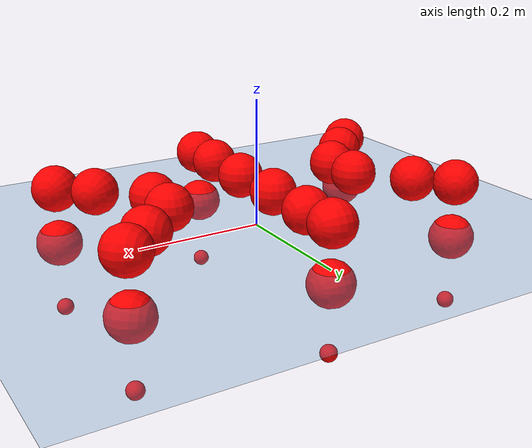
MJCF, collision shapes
<mujoco model="Golem">
  <compiler angle="radian" assetdir="assets" balanceinertia="true" inertiafromgeom="false"/>

  <option timestep="0.005" density="1.2" viscosity="2e-05"/>

  <size nkey="1"/>

  <visual>
    <quality shadowsize="8192"/>
    <map shadowclip="0.5"/>
  </visual>

  <default>
    <default class="/">
      <joint armature="0.01" damping="0.01" frictionloss="0.01"/>
      <geom contype="0" conaffinity="0" group="1" solref="-1000 -80"/>
      <site size="0.01 0.005 0.005" group="5"/>
      <general forcelimited="true" biastype="affine" gainprm="25" biasprm="0 -25 -0.5"/>
      <default class="visual">
        <geom type="mesh" group="2"/>
      </default>
      <default class="collision">
        <geom group="3"/>
      </default>
      <default class="foot">
        <geom size="0.01 0 0" condim="6" group="4" priority="1" solimp="0.015 1 0.01"/>
      </default>
      <default class="reward_collision_sphere">
        <geom group="5" rgba="1 0 0 1"/>
      </default>
    </default>
  </default>

  <asset>
    <texture type="skybox" colorspace="auto" name="//unnamed_texture_0" builtin="gradient" rgb1="0.95 0.95 0.95" rgb2="0.95 0.95 0.95" width="100" height="600"/>
    <texture type="2d" colorspace="auto" name="texplane" builtin="checker" rgb1="0.345 0.575 0.748" rgb2="0.345 0.575 0.748" markrgb="1 1 1" width="512" height="512"/>
    <material name="MatPlane" class="/" texture="texplane" texuniform="true" texrepeat="2 2" specular="0.9"/>
    <mesh name="body" class="/" file="body.stl" scale="0.001 0.001 0.001"/>
    <mesh name="coxa" class="/" file="coxa.stl" scale="0.001 0.001 0.001"/>
    <mesh name="femur" class="/" file="femur.stl" scale="0.001 0.001 0.001"/>
    <mesh name="tibia" class="/" file="tibia.stl" scale="0.001 0.001 0.001"/>
    <mesh name="tarsus" class="/" file="tarsus.stl" scale="0.001 0.001 0.001"/>
  </asset>

  <worldbody>
    <geom name="floor" class="/" size="100 100 0.125" type="plane" group="0" material="MatPlane"/>
    <light name="toplight_shadow" class="/" pos="0 0 5" dir="0.0990148 0.0990148 -0.990148" type="directional" ambient="0.04 0.04 0.04" diffuse="0.55 0.55 0.55" specular="0.12 0.12 0.12"/>
    <light name="toplight_fill" class="/" pos="0 0 5" dir="0.0990148 0.0990148 -0.990148" type="directional" castshadow="false" ambient="0.04 0.04 0.04" diffuse="0.3 0.3 0.3" specular="0.08 0.08 0.08"/>
    <body name="trunk" pos="-3.43076e-05 -0.000514996 0.000752323" quat="1 3.24167e-05 -6.61657e-06 2.4336e-05">
      <inertial pos="-0.000417795 0.000451585 -0.00391428" quat="0.999998 0.000371241 0.00171306 -0.000125204" mass="2.65602" diaginertia="0.0120303 0.000797173 0.0124493"/>
      <joint name="//unnamed_joint_0" type="free"/>
      <geom name="//unnamed_geom_1" class="/" pos="0 0 0.0668654" quat="1 0 0 0" type="mesh" rgba="0.9 0.9 0.9 1" mesh="body"/>
      <site name="imu" class="/" pos="0.134462 0.000358929 0.110678" size="0.00893882"/>
      <camera name="track" class="/" pos="0 -1.20043 0" quat="0.707107 0.707107 0 0" mode="trackcom"/>
      <camera name="ego_camera" class="/" pos="0.134766 0 0.104477" quat="-0.5 -0.5 0.5 0.5"/>
      <body name="coxa_RR" pos="-0.183479 -0.0511168 0.0688938" quat="0.383018 0.00023247 -0.000545308 -0.923741">
        <inertial pos="-0.000297544 -0.000363407 0.00175299" quat="0.999991 -0.00063684 -0.000782988 0.00404691" mass="0.143322" diaginertia="0.0119867 0.000784037 0.012683"/>
        <joint name="coxa_joint_RR" class="/" pos="0 0 0" axis="-0.00214653 -0.0029173 -0.999993" range="-3.15443 3.14405" armature="0.00913565" damping="0.00503044" frictionloss="0.00866778"/>
        <geom name="//unnamed_geom_2" class="/" type="mesh" rgba="0.2 0.2 0.2 1" mesh="coxa"/>
        <geom name="//unnamed_geom_3" class="reward_collision_sphere" size="0.0357553" pos="-0.0310998 0 0"/>
        <body name="femur_RR" pos="0.0625048 0.00189252 -0.000505316" quat="0.499514 -0.500225 0.500145 0.500115">
          <inertial pos="2.39436e-05 0.000933073 -0.000925497" quat="0.999992 0.00104339 -0.00112273 0.0036898" mass="0.142036" diaginertia="0.0117854 0.000784143 0.0123728"/>
          <joint name="femur_joint_RR" class="/" pos="0 0 0" axis="-0.00021823 0.000579278 -1" range="-3.14586 3.14571" armature="0.00896938" damping="0.00209952" frictionloss="0.00890571"/>
          <geom name="//unnamed_geom_4" class="/" type="mesh" rgba="0.9 0.9 0.9 1" mesh="femur"/>
          <geom name="//unnamed_geom_5" class="reward_collision_sphere" size="0.0357553"/>
          <body name="tibia_RR" pos="0.000668354 -0.0661482 0.00108585" quat="-3.70814e-05 1 -1.78979e-05 5.51272e-05">
            <inertial pos="-0.00019297 0.000979515 0.000408406" quat="1 -0.000158947 -4.34725e-05 -0.000248024" mass="0.144261" diaginertia="0.0120886 0.000784523 0.0125173"/>
            <joint name="tibia_joint_RR" class="/" pos="0 0 0" axis="0.0011541 -0.0038578 0.999992" range="-3.1235 3.14667" armature="0.00938683" damping="0" frictionloss="0.00958962"/>
            <geom name="//unnamed_geom_6" class="/" type="mesh" rgba="0.2 0.2 0.2 1" mesh="tibia"/>
            <geom name="//unnamed_geom_7" class="reward_collision_sphere" size="0.0357553"/>
            <body name="tarsus_RR" pos="0.0901543 -0.000203032 -0.00164268" quat="1 -1.43056e-05 -0.000398919 7.1491e-05">
              <inertial pos="0.0608099 2.78279e-05 -0.000638652" quat="0.503872 0.498041 0.498231 0.499833" mass="0.14223" diaginertia="0.0119858 0.000775562 0.0126053"/>
              <joint name="tarsus_joint_RR" class="/" pos="0 0 0" axis="0.000243177 0.00191036 0.999998" stiffness="4.53075e-05" range="-3.12046 3.13659" armature="0.00900445" damping="0.00364539" frictionloss="0.00913281"/>
              <geom name="//unnamed_geom_8" class="/" type="mesh" rgba="0.9 0.9 0.9 1" mesh="tarsus"/>
              <geom name="foot_1" class="foot" size="0.00882047" pos="0.116106 0 0" quat="0 -0.707107 0 0.707107"/>
              <geom name="//unnamed_geom_10" class="reward_collision_sphere" size="0.0357553"/>
              <geom name="//unnamed_geom_11" class="reward_collision_sphere" size="0.0134082" pos="0.111441 0 0"/>
              <site name="foot_1" class="foot" pos="0.116106 0 0" quat="0 -0.707107 0 0.707107" size="0.00893882"/>
            </body>
          </body>
        </body>
      </body>
      <body name="coxa_RM" pos="0.000616128 -0.0811356 0.0670311" quat="0.707082 0.000280322 -2.14573e-05 -0.707131">
        <inertial pos="0.000440837 -2.2845e-05 0.000194872" quat="0.999981 0.00127026 0.0028502 -0.00525795" mass="0.146829" diaginertia="0.0121306 0.000799889 0.0126004"/>
        <joint name="coxa_joint_RM" class="/" pos="0 0 0" axis="-0.0022199 0.0043384 -0.999988" range="-3.13743 3.15757" armature="0.00893809" damping="0.0122085" frictionloss="0.00861786"/>
        <geom name="//unnamed_geom_12" class="/" type="mesh" rgba="0.2 0.2 0.2 1" mesh="coxa"/>
        <geom name="//unnamed_geom_13" class="reward_collision_sphere" size="0.0357553" pos="-0.0310998 0 0"/>
        <body name="femur_RM" pos="0.0592043 -0.000786 0.000544455" quat="0.49982 -0.50006 0.499949 0.500172">
          <inertial pos="-3.31196e-05 -0.000775042 0.000176162" quat="0.999997 -0.000893817 0.00237442 0.000478362" mass="0.141173" diaginertia="0.0119447 0.000781695 0.0125948"/>
          <joint name="femur_joint_RM" class="/" pos="0 0 0" axis="0.000451572 6.36373e-05 -1" range="-3.1408 3.11995" armature="0.00865687" damping="0.00534465" frictionloss="0.00913515"/>
          <geom name="//unnamed_geom_14" class="/" type="mesh" rgba="0.9 0.9 0.9 1" mesh="femur"/>
          <geom name="//unnamed_geom_15" class="reward_collision_sphere" size="0.0357553"/>
          <body name="tibia_RM" pos="0.000674936 -0.0636672 -0.00065998" quat="-0.000133206 1 -5.21158e-05 -0.000268494">
            <inertial pos="-1.75821e-05 -0.000752736 -0.000197391" quat="0.999998 -0.00064287 0.0014459 -0.00152246" mass="0.1442" diaginertia="0.0120209 0.000777276 0.0125986"/>
            <joint name="tibia_joint_RM" class="/" pos="0 0 0" axis="-0.00139135 0.00276337 0.999995" range="-3.15481 3.1263" armature="0.00854679" damping="0.00475844" frictionloss="0.00926644"/>
            <geom name="//unnamed_geom_16" class="/" type="mesh" rgba="0.2 0.2 0.2 1" mesh="tibia"/>
            <geom name="//unnamed_geom_17" class="reward_collision_sphere" size="0.0357553"/>
            <body name="tarsus_RM" pos="0.0887441 -0.00111708 0.00107533" quat="1 0.000183356 -3.76693e-05 -0.000227206">
              <inertial pos="0.0623465 0.000792801 0.000416691" quat="0.500463 0.499826 0.499975 0.499735" mass="0.14353" diaginertia="0.0121065 0.00078535 0.0125764"/>
              <joint name="tarsus_joint_RM" class="/" pos="0 0 0" axis="-0.00124845 -0.00232717 0.999997" range="-3.15136 3.13031" armature="0.0093395" damping="0.00289696" frictionloss="0.00905649"/>
              <geom name="//unnamed_geom_18" class="/" type="mesh" rgba="0.9 0.9 0.9 1" mesh="tarsus"/>
              <geom name="foot_2" class="foot" size="0.0092885" pos="0.116106 0 0" quat="0 -0.707107 0 0.707107"/>
              <geom name="//unnamed_geom_20" class="reward_collision_sphere" size="0.0357553"/>
              <geom name="//unnamed_geom_21" class="reward_collision_sphere" size="0.0134082" pos="0.111441 0 0"/>
              <site name="foot_2" class="foot" pos="0.116106 0 0" quat="0 -0.707107 0 0.707107" size="0.00893882"/>
            </body>
          </body>
        </body>
      </body>
      <body name="coxa_RF" pos="0.183595 -0.0513181 0.067155" quat="0.923914 4.96292e-05 -9.97087e-05 -0.382601">
        <inertial pos="-0.000693622 -0.000139589 0.000424348" quat="0.999992 -0.00153942 0.00364312 0.0010218" mass="0.143565" diaginertia="0.0121798 0.00079834 0.0126088"/>
        <joint name="coxa_joint_RF" class="/" pos="0 0 0" axis="-0.00172157 -0.00267182 -0.999995" range="-3.13791 3.15402" armature="0.00872466" damping="0.0125344" frictionloss="0.0091673"/>
        <geom name="//unnamed_geom_22" class="/" type="mesh" rgba="0.2 0.2 0.2 1" mesh="coxa"/>
        <geom name="//unnamed_geom_23" class="reward_collision_sphere" size="0.0357553" pos="-0.0310998 0 0"/>
        <body name="femur_RF" pos="0.0619154 0.000425766 -0.000835202" quat="0.499999 -0.499984 0.49998 0.500036">
          <inertial pos="0.000610449 -0.000277041 -6.30789e-06" quat="0.999989 0.00148331 0.0044516 -0.000300488" mass="0.14359" diaginertia="0.0120797 0.000783118 0.012577"/>
          <joint name="femur_joint_RF" class="/" pos="0 0 0" axis="9.88364e-07 0.00329081 -0.999995" range="-3.15711 3.13575" armature="0.00903606" damping="0.00588149" frictionloss="0.0091124"/>
          <geom name="//unnamed_geom_24" class="/" type="mesh" rgba="0.9 0.9 0.9 1" mesh="femur"/>
          <geom name="//unnamed_geom_25" class="reward_collision_sphere" size="0.0357553"/>
          <body name="tibia_RF" pos="0.00100101 -0.0660346 -0.000281819" quat="7.20716e-05 1 -0.00037029 0.000275586">
            <inertial pos="5.13651e-05 -0.000382781 1.71088e-06" quat="0.999998 0.00199315 0.000388296 -0.000878864" mass="0.138845" diaginertia="0.0118422 0.000761595 0.0123954"/>
            <joint name="tibia_joint_RF" class="/" pos="0 0 0" axis="-0.000777217 -0.00113798 0.999999" range="-3.12036 3.13264" armature="0.0087865" damping="0" frictionloss="0.0093312"/>
            <geom name="//unnamed_geom_26" class="/" type="mesh" rgba="0.2 0.2 0.2 1" mesh="tibia"/>
            <geom name="//unnamed_geom_27" class="reward_collision_sphere" size="0.0357553"/>
            <body name="tarsus_RF" pos="0.0893422 0.00065109 -0.000269449" quat="1 -3.84354e-05 1.59485e-05 -8.2095e-06">
              <inertial pos="0.061466 0.00060839 -0.000303209" quat="0.499404 0.499237 0.502353 0.498998" mass="0.144097" diaginertia="0.0122457 0.000787305 0.0126707"/>
              <joint name="tarsus_joint_RF" class="/" pos="0 0 0" axis="-0.00624763 0.00697264 0.999956" range="-3.14924 3.13079" armature="0.00890901" damping="0.0011792" frictionloss="0.0085268"/>
              <geom name="//unnamed_geom_28" class="/" type="mesh" rgba="0.9 0.9 0.9 1" mesh="tarsus"/>
              <geom name="foot_3" class="foot" size="0.00868499" pos="0.116106 0 0" quat="0 -0.707107 0 0.707107"/>
              <geom name="//unnamed_geom_30" class="reward_collision_sphere" size="0.0357553"/>
              <geom name="//unnamed_geom_31" class="reward_collision_sphere" size="0.0134082" pos="0.111441 0 0"/>
              <site name="foot_3" class="foot" pos="0.116106 0 0" quat="0 -0.707107 0 0.707107" size="0.00893882"/>
            </body>
          </body>
        </body>
      </body>
      <body name="coxa_LR" pos="-0.183633 0.0533294 0.0675863" quat="0.38269 -0.000176096 0.000104296 0.923877">
        <inertial pos="0.00120806 -0.00028615 0.000332377" quat="0.999998 -0.00055976 0.000648239 0.00190204" mass="0.144053" diaginertia="0.0120867 0.000790172 0.0125233"/>
        <joint name="coxa_joint_LR" class="/" pos="0 0 0" axis="-0.00122427 0.00235315 -0.999996" range="-3.12102 3.14995" armature="0.00885649" damping="0.00954427" frictionloss="0.00871521"/>
        <geom name="//unnamed_geom_32" class="/" type="mesh" rgba="0.2 0.2 0.2 1" mesh="coxa"/>
        <geom name="//unnamed_geom_33" class="reward_collision_sphere" size="0.0357553" pos="-0.0310998 0 0"/>
        <body name="femur_LR" pos="0.0635768 -0.00321647 -0.00144296" quat="0.500056 -0.499917 0.500054 0.499973">
          <inertial pos="0.000144785 -0.000713234 -0.000668614" quat="0.99999 -0.000216325 0.00224289 -0.00390536" mass="0.144082" diaginertia="0.0118906 0.000779551 0.0125309"/>
          <joint name="femur_joint_LR" class="/" pos="0 0 0" axis="0.00295829 -0.00852734 0.999959" range="-3.12095 3.12559" armature="0.00955525" damping="0.00604095" frictionloss="0.00886081"/>
          <geom name="//unnamed_geom_34" class="/" type="mesh" rgba="0.9 0.9 0.9 1" mesh="femur"/>
          <geom name="//unnamed_geom_35" class="reward_collision_sphere" size="0.0357553"/>
          <body name="tibia_LR" pos="0.000502134 -0.0659388 -0.0016551" quat="-0.000159842 1 -0.000133802 3.97046e-06">
            <inertial pos="0.000747882 -0.000124074 -3.80963e-05" quat="0.999996 -0.00202446 0.000415953 0.00215318" mass="0.144181" diaginertia="0.0120793 0.000772933 0.0126135"/>
            <joint name="tibia_joint_LR" class="/" pos="0 0 0" axis="-0.000504503 0.00179639 -0.999998" range="-3.12141 3.13001" armature="0.00900664" damping="0.00753343" frictionloss="0.00892969"/>
            <geom name="//unnamed_geom_36" class="/" type="mesh" rgba="0.2 0.2 0.2 1" mesh="tibia"/>
            <geom name="//unnamed_geom_37" class="reward_collision_sphere" size="0.0357553"/>
            <body name="tarsus_LR" pos="0.0905869 0.00092106 0.00149484" quat="1 -5.55257e-07 -1.23392e-05 9.94062e-05">
              <inertial pos="0.0629796 0.00019426 0.000700653" quat="0.500038 0.500075 0.500056 0.499831" mass="0.142479" diaginertia="0.012041 0.000797175 0.0123671"/>
              <joint name="tarsus_joint_LR" class="/" pos="0 0 0" axis="-0.000128626 0.00043832 -1" range="-3.14414 3.12137" armature="0.00897137" damping="0" frictionloss="0.00933209"/>
              <geom name="//unnamed_geom_38" class="/" type="mesh" rgba="0.9 0.9 0.9 1" mesh="tarsus"/>
              <geom name="foot_4" class="foot" size="0.00855983" pos="0.116106 0 0" quat="0.707107 0 -0.707107 0"/>
              <geom name="//unnamed_geom_40" class="reward_collision_sphere" size="0.0357553"/>
              <geom name="//unnamed_geom_41" class="reward_collision_sphere" size="0.0134082" pos="0.111441 0 0"/>
              <site name="foot_4" class="foot" pos="0.116106 0 0" quat="0.707107 0 -0.707107 0" size="0.00893882"/>
            </body>
          </body>
        </body>
      </body>
      <body name="coxa_LM" pos="-0.000961467 0.0775778 0.0676986" quat="0.707039 -2.22375e-05 2.42004e-05 0.707175">
        <inertial pos="0.00036613 -7.35414e-05 4.1134e-05" quat="0.999997 0.00155874 -0.00116597 -0.0014183" mass="0.144064" diaginertia="0.0118284 0.00077687 0.0124532"/>
        <joint name="coxa_joint_LM" class="/" pos="0 0 0" axis="0.004929 0.000756874 -0.999988" range="-3.14774 3.14465" armature="0.00875308" damping="0.00615739" frictionloss="0.00893508"/>
        <geom name="//unnamed_geom_42" class="/" type="mesh" rgba="0.2 0.2 0.2 1" mesh="coxa"/>
        <geom name="//unnamed_geom_43" class="reward_collision_sphere" size="0.0357553" pos="-0.0310998 0 0"/>
        <body name="femur_LM" pos="0.0580481 0.000238264 -0.00112842" quat="0.499998 -0.500005 0.499996 0.500002">
          <inertial pos="0.000355995 -1.68556e-05 -0.00138753" quat="0.999998 0.00055494 -0.000903621 -0.00154894" mass="0.14537" diaginertia="0.0121156 0.000792147 0.0125394"/>
          <joint name="femur_joint_LM" class="/" pos="0 0 0" axis="0.00676882 -0.00214978 0.999975" range="-3.13687 3.1155" armature="0.00929498" damping="0.00254875" frictionloss="0.00890116"/>
          <geom name="//unnamed_geom_44" class="/" type="mesh" rgba="0.9 0.9 0.9 1" mesh="femur"/>
          <geom name="//unnamed_geom_45" class="reward_collision_sphere" size="0.0357553"/>
          <body name="tibia_LM" pos="-0.000247745 -0.0612783 0.00149811" quat="0.000282098 1 -8.13501e-05 0.00040254">
            <inertial pos="-0.00102051 -0.000903034 -0.000256316" quat="0.999997 -0.00155011 -0.00105962 -0.00172678" mass="0.138601" diaginertia="0.0117442 0.000763253 0.0122098"/>
            <joint name="tibia_joint_LM" class="/" pos="0 0 0" axis="-0.00116342 0.000548441 -0.999999" stiffness="0.000182869" range="-3.14058 3.15857" armature="0.00967669" damping="0" frictionloss="0.00890098"/>
            <geom name="//unnamed_geom_46" class="/" type="mesh" rgba="0.2 0.2 0.2 1" mesh="tibia"/>
            <geom name="//unnamed_geom_47" class="reward_collision_sphere" size="0.0357553"/>
            <body name="tarsus_LM" pos="0.091499 -0.000553053 -0.00131041" quat="1 0.00011101 0.000242533 6.40883e-05">
              <inertial pos="0.0638559 -0.000461497 -0.000169562" quat="0.501923 0.497135 0.498216 0.502705" mass="0.14054" diaginertia="0.0117517 0.000750128 0.0123076"/>
              <joint name="tarsus_joint_LM" class="/" pos="0 0 0" axis="-0.00121177 -0.00169786 -0.999998" range="-3.13632 3.138" armature="0.00874709" damping="0.00843154" frictionloss="0.00945506"/>
              <geom name="//unnamed_geom_48" class="/" type="mesh" rgba="0.9 0.9 0.9 1" mesh="tarsus"/>
              <geom name="foot_5" class="foot" size="0.00874768" pos="0.116106 0 0" quat="0.707107 0 -0.707107 0"/>
              <geom name="//unnamed_geom_50" class="reward_collision_sphere" size="0.0357553"/>
              <geom name="//unnamed_geom_51" class="reward_collision_sphere" size="0.0134082" pos="0.111441 0 0"/>
              <site name="foot_5" class="foot" pos="0.116106 0 0" quat="0.707107 0 -0.707107 0" size="0.00893882"/>
            </body>
          </body>
        </body>
      </body>
      <body name="coxa_LF" pos="0.184574 0.0502599 0.0675131" quat="0.923905 -3.69037e-05 -0.000101707 0.382622">
        <inertial pos="-0.000521148 -0.00127313 0.000636458" quat="1 -0.000327393 -0.000860794 9.55426e-05" mass="0.143367" diaginertia="0.012003 0.000767632 0.0124292"/>
        <joint name="coxa_joint_LF" class="/" pos="0 0 0" axis="-0.000556133 0.000240108 -1" range="-3.12048 3.13788" armature="0.00855757" damping="0" frictionloss="0.00908921"/>
        <geom name="//unnamed_geom_52" class="/" type="mesh" rgba="0.2 0.2 0.2 1" mesh="coxa"/>
        <geom name="//unnamed_geom_53" class="reward_collision_sphere" size="0.0357553" pos="-0.0310998 0 0"/>
        <body name="femur_LF" pos="0.0620745 0.00121397 -0.00024279" quat="0.500061 -0.500073 0.49983 0.500036">
          <inertial pos="-0.000208512 0.000796522 -0.000139581" quat="1 0.000163531 1.54872e-05 -8.60472e-05" mass="0.141759" diaginertia="0.0117787 0.000775575 0.0123907"/>
          <joint name="femur_joint_LF" class="/" pos="0 0 0" axis="0.0011889 0.00384535 0.999992" range="-3.121 3.13494" armature="0.00910587" damping="0" frictionloss="0.00901466"/>
          <geom name="//unnamed_geom_54" class="/" type="mesh" rgba="0.9 0.9 0.9 1" mesh="femur"/>
          <geom name="//unnamed_geom_55" class="reward_collision_sphere" size="0.0357553"/>
          <body name="tibia_LF" pos="0.000218723 -0.06633 -0.000343199" quat="-0.000465169 1 1.22622e-05 0.00024368">
            <inertial pos="-0.0008648 0.000718407 0.000901076" quat="1 6.49699e-05 0.000239325 0.000186306" mass="0.141114" diaginertia="0.0120426 0.000780552 0.0125599"/>
            <joint name="tibia_joint_LF" class="/" pos="0 0 0" axis="-0.00379658 -0.00170863 -0.999991" range="-3.14086 3.1427" armature="0.00930561" damping="0" frictionloss="0.00891624"/>
            <geom name="//unnamed_geom_56" class="/" type="mesh" rgba="0.2 0.2 0.2 1" mesh="tibia"/>
            <geom name="//unnamed_geom_57" class="reward_collision_sphere" size="0.0357553"/>
            <body name="tarsus_LF" pos="0.093029 0.000958463 -0.000493262" quat="1 7.73334e-06 -0.000101926 4.61959e-05">
              <inertial pos="0.0624351 0.000307133 4.04841e-05" quat="0.502245 0.495239 0.497607 0.504852" mass="0.144517" diaginertia="0.0119859 0.000782017 0.0124255"/>
              <joint name="tarsus_joint_LF" class="/" pos="0 0 0" axis="-0.00398312 0.00552345 -0.999977" stiffness="0.0307964" range="-3.15594 3.14769" armature="0.00886811" damping="0.0261087" frictionloss="0.00934462"/>
              <geom name="//unnamed_geom_58" class="/" type="mesh" rgba="0.9 0.9 0.9 1" mesh="tarsus"/>
              <geom name="foot_6" class="foot" size="0.00909682" pos="0.116106 0 0" quat="0.707107 0 -0.707107 0"/>
              <geom name="//unnamed_geom_60" class="reward_collision_sphere" size="0.0357553"/>
              <geom name="//unnamed_geom_61" class="reward_collision_sphere" size="0.0134082" pos="0.111441 0 0"/>
              <site name="foot_6" class="foot" pos="0.116106 0 0" quat="0.707107 0 -0.707107 0" size="0.00893882"/>
            </body>
          </body>
        </body>
      </body>
    </body>
  </worldbody>

  <contact>
    <pair class="/" geom1="floor" geom2="foot_1" name="//unnamed_contact_0"/>
    <pair class="/" geom1="floor" geom2="foot_2" name="//unnamed_contact_1"/>
    <pair class="/" geom1="floor" geom2="foot_3" name="//unnamed_contact_2"/>
    <pair class="/" geom1="floor" geom2="foot_4" name="//unnamed_contact_3"/>
    <pair class="/" geom1="floor" geom2="foot_5" name="//unnamed_contact_4"/>
    <pair class="/" geom1="floor" geom2="foot_6" name="//unnamed_contact_5"/>
  </contact>

  <actuator>
    <general name="coxa_joint_RR" class="/" joint="coxa_joint_RR" forcerange="-6.50607 6.50607" gainprm="21.6477" biasprm="0 -21.6477 -0.463471"/>
    <general name="femur_joint_RR" class="/" joint="femur_joint_RR" forcerange="-6.52232 6.52232" gainprm="21.6477" biasprm="0 -21.6477 -0.463471"/>
    <general name="tibia_joint_RR" class="/" joint="tibia_joint_RR" forcerange="-6.50004 6.50004" gainprm="21.6477" biasprm="0 -21.6477 -0.463471"/>
    <general name="tarsus_joint_RR" class="/" joint="tarsus_joint_RR" forcerange="-6.5062 6.5062" gainprm="21.6477" biasprm="0 -21.6477 -0.463471"/>
    <general name="coxa_joint_RM" class="/" joint="coxa_joint_RM" forcerange="-6.69732 6.69732" gainprm="21.6477" biasprm="0 -21.6477 -0.463471"/>
    <general name="femur_joint_RM" class="/" joint="femur_joint_RM" forcerange="-6.51729 6.51729" gainprm="21.6477" biasprm="0 -21.6477 -0.463471"/>
    <general name="tibia_joint_RM" class="/" joint="tibia_joint_RM" forcerange="-6.48378 6.48378" gainprm="21.6477" biasprm="0 -21.6477 -0.463471"/>
    <general name="tarsus_joint_RM" class="/" joint="tarsus_joint_RM" forcerange="-6.32621 6.32621" gainprm="21.6477" biasprm="0 -21.6477 -0.463471"/>
    <general name="coxa_joint_RF" class="/" joint="coxa_joint_RF" forcerange="-6.5502 6.5502" gainprm="21.6477" biasprm="0 -21.6477 -0.463471"/>
    <general name="femur_joint_RF" class="/" joint="femur_joint_RF" forcerange="-6.64554 6.64554" gainprm="21.6477" biasprm="0 -21.6477 -0.463471"/>
    <general name="tibia_joint_RF" class="/" joint="tibia_joint_RF" forcerange="-6.39832 6.39832" gainprm="21.6477" biasprm="0 -21.6477 -0.463471"/>
    <general name="tarsus_joint_RF" class="/" joint="tarsus_joint_RF" forcerange="-6.65184 6.65184" gainprm="21.6477" biasprm="0 -21.6477 -0.463471"/>
    <general name="coxa_joint_LR" class="/" joint="coxa_joint_LR" forcerange="-6.57952 6.57952" gainprm="21.6477" biasprm="0 -21.6477 -0.463471"/>
    <general name="femur_joint_LR" class="/" joint="femur_joint_LR" forcerange="-6.51766 6.51766" gainprm="21.6477" biasprm="0 -21.6477 -0.463471"/>
    <general name="tibia_joint_LR" class="/" joint="tibia_joint_LR" forcerange="-6.47813 6.47813" gainprm="21.6477" biasprm="0 -21.6477 -0.463471"/>
    <general name="tarsus_joint_LR" class="/" joint="tarsus_joint_LR" forcerange="-6.45677 6.45677" gainprm="21.6477" biasprm="0 -21.6477 -0.463471"/>
    <general name="coxa_joint_LM" class="/" joint="coxa_joint_LM" forcerange="-6.43867 6.43867" gainprm="21.6477" biasprm="0 -21.6477 -0.463471"/>
    <general name="femur_joint_LM" class="/" joint="femur_joint_LM" forcerange="-6.41248 6.41248" gainprm="21.6477" biasprm="0 -21.6477 -0.463471"/>
    <general name="tibia_joint_LM" class="/" joint="tibia_joint_LM" forcerange="-6.52589 6.52589" gainprm="21.6477" biasprm="0 -21.6477 -0.463471"/>
    <general name="tarsus_joint_LM" class="/" joint="tarsus_joint_LM" forcerange="-6.34263 6.34263" gainprm="21.6477" biasprm="0 -21.6477 -0.463471"/>
    <general name="coxa_joint_LF" class="/" joint="coxa_joint_LF" forcerange="-6.75746 6.75746" gainprm="21.6477" biasprm="0 -21.6477 -0.463471"/>
    <general name="femur_joint_LF" class="/" joint="femur_joint_LF" forcerange="-6.52684 6.52684" gainprm="21.6477" biasprm="0 -21.6477 -0.463471"/>
    <general name="tibia_joint_LF" class="/" joint="tibia_joint_LF" forcerange="-6.57055 6.57055" gainprm="21.6477" biasprm="0 -21.6477 -0.463471"/>
    <general name="tarsus_joint_LF" class="/" joint="tarsus_joint_LF" forcerange="-6.49433 6.49433" gainprm="21.6477" biasprm="0 -21.6477 -0.463471"/>
  </actuator>

  <sensor>
    <gyro site="imu" name="imu_angular_velocity"/>
    <velocimeter site="imu" name="imu_linear_velocity"/>
    <framelinvel objtype="site" objname="foot_1" name="foot_1_global_linear_velocity"/>
    <framelinvel objtype="site" objname="foot_2" name="foot_2_global_linear_velocity"/>
    <framelinvel objtype="site" objname="foot_3" name="foot_3_global_linear_velocity"/>
    <framelinvel objtype="site" objname="foot_4" name="foot_4_global_linear_velocity"/>
    <framelinvel objtype="site" objname="foot_5" name="foot_5_global_linear_velocity"/>
    <framelinvel objtype="site" objname="foot_6" name="foot_6_global_linear_velocity"/>
  </sensor>

  <keyframe>
    <key name="home" qpos="0 0 0.1457 1 0 0 0 0 0 0 0 0 0 0 0 0 0 0 0 0 0 0 0 0 0 0 0 0 0 0 0"/>
  </keyframe>
</mujoco>
